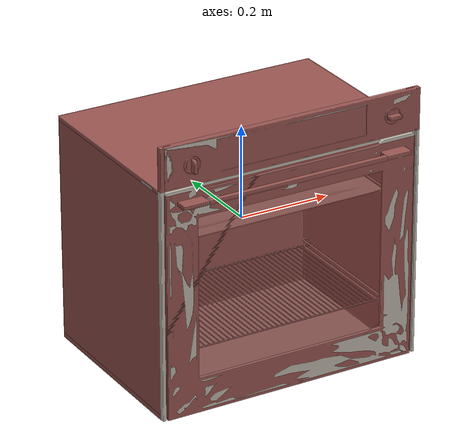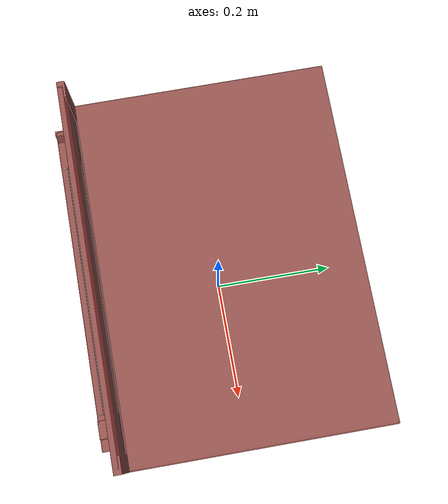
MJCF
<?xml version='1.0' encoding='UTF-8'?>
<mujoco model="model">
  <option timestep="0.002" gravity="0.0 0.0 -9.81"/>
  <compiler angle="radian"/>
  <asset>
    <mesh file="visuals/door.obj" name="door_vis"/>
    <mesh file="visuals/door_Clear.obj" name="door_Clear_vis"/>
    <mesh file="visuals/knob_temp.obj" name="knob_temp_vis"/>
    <mesh file="visuals/knob_time.obj" name="knob_time_vis"/>
    <mesh file="visuals/Body001.obj" name="Body001_vis"/>
    <mesh file="visuals/rack0.obj" name="rack0_vis"/>
    <mesh file="visuals/rack1.obj" name="rack1_vis"/>
    <texture file="visuals/T_BC001.png" name="Body001_material" type="2d"/>
    <material name="Body001_material" rgba="1 1 1 1.0" texture="Body001_material" shininess="0.4472135901451111" specular="1"/>
    <texture file="visuals/T_BC001.png" name="door_material" type="2d"/>
    <material name="door_material" rgba="1 1 1 1.0" texture="door_material" shininess="0.4472135901451111" specular="1"/>
    <material name="door_Clear_material" rgba="0.0984579548239708 0.0984579548239708 0.0984579548239708 0.699999988079071" shininess="0.4472135901451111" specular="0.3103448502657381"/>
    <texture file="visuals/T_BC001.png" name="knob_temp_material" type="2d"/>
    <material name="knob_temp_material" rgba="1 1 1 1.0" texture="knob_temp_material" shininess="0.4472135901451111" specular="0.3103448502657381"/>
    <texture file="visuals/T_BC001.png" name="knob_time_material" type="2d"/>
    <material name="knob_time_material" rgba="1 1 1 1.0" texture="knob_time_material" shininess="0.4472135901451111" specular="0.3103448502657381"/>
    <texture file="visuals/T_BC001.png" name="rack0_material" type="2d"/>
    <material name="rack0_material" rgba="1 1 1 1.0" texture="rack0_material" shininess="0.4472135901451111" specular="5"/>
    <texture file="visuals/T_BC001.png" name="rack1_material" type="2d"/>
    <material name="rack1_material" rgba="1 1 1 1.0" texture="rack1_material" shininess="0.4472135901451111" specular="5"/>
  </asset>
  <default>
    <default class="visual">
      <geom conaffinity="0" contype="0" group="1" type="mesh"/>
    </default>
    <default class="collision">
      <geom group="0" rgba="0.5 0 0 0.5"/>
    </default>
    <default class="spawn">
      <geom group="0" rgba="1 1 1 0.5" contype="0" conaffinity="0"/>
      <site group="0" rgba="1 1 1 0.5"/>
    </default>
    <default class="region">
      <geom group="1" conaffinity="0" contype="0" rgba="0 1 0 0"/>
    </default>
  </default>
  <worldbody>
    <body>
      <body name="object">
        <geom mesh="Body001_vis" type="mesh" solimp="0.998 0.998 0.001" solref="0.001 1" friction="0.95 0.3 0.1" class="visual" material="Body001_material"/>
        <geom class="collision" type="box" pos="0.27580202 0.01959658 -0.04472774" size="0.016508709639310837 0.20345096290111542 0.24839644134044647" quat="1.0 0.0 0.0 0.0"/>
        <geom class="collision" type="box" pos="0.00002453 0.01894817 -0.28782088" size="0.2923431694507599 0.2040993571281433 0.005308896768838167" quat="1.0 0.0 0.0 0.0"/>
        <geom class="collision" type="box" pos="0.00007293 0.20158333 -0.05486662" size="0.2922380864620209 0.021463928744196892 0.23826324939727783" quat="1.0 0.0 0.0 0.0"/>
        <geom class="collision" type="box" pos="0.00000002 -0.18993939 0.24786870" size="0.29237061738967896 0.006194792687892914 0.045261602848768234" quat="1.0 0.0 0.0 0.0"/>
        <geom class="collision" type="box" pos="0.00007259 0.01880797 0.19314815" size="0.2922322154045105 0.20423954725265503 0.010526210069656372" quat="1.0 0.0 0.0 0.0"/>
        <geom class="collision" type="box" pos="-0.27598882 0.01923741 -0.04943070" size="0.016176825389266014 0.20381009578704834 0.24369482696056366" quat="1.0 0.0 0.0 0.0"/>
        <geom class="collision" type="box" pos="-0.24940670 0.01157247 -0.17394648" size="0.010190319269895554 0.15972642600536346 0.0017948284512385726" quat="1.0 0.0 0.0 0.0"/>
        <geom class="collision" type="box" pos="-0.24940670 0.01157247 -0.18717948" size="0.010190412402153015 0.15972642600536346 0.0017948471941053867" quat="1.0 0.0 0.0 0.0"/>
        <geom class="collision" type="box" pos="-0.24940670 0.01157247 0.05792674" size="0.010190421715378761 0.15972642600536346 0.001794849056750536" quat="1.0 0.0 0.0 0.0"/>
        <geom class="collision" type="box" pos="-0.24940670 0.01157247 0.07195982" size="0.010190431028604507 0.15972642600536346 0.0017948509193956852" quat="1.0 0.0 0.0 0.0"/>
        <geom class="collision" type="box" pos="0.24834456 0.01157247 0.07195982" size="0.010190440341830254 0.15972642600536346 0.0017948527820408344" quat="1.0 0.0 0.0 0.0"/>
        <geom class="collision" type="box" pos="0.24834456 0.01157247 0.05792674" size="0.010190449655056 0.15972642600536346 0.0017948546446859837" quat="1.0 0.0 0.0 0.0"/>
        <geom class="collision" type="box" pos="0.24952960 0.01157247 -0.18717948" size="0.010190458968281746 0.15972642600536346 0.0017948565073311329" quat="1.0 0.0 0.0 0.0"/>
        <geom class="collision" type="box" pos="0.24952960 0.01157247 -0.17394648" size="0.010190468281507492 0.15972642600536346 0.0017948583699762821" quat="1.0 0.0 0.0 0.0"/>
        <body name="door">
          <joint axis="1.0 0.0 0.0" pos="0.00073342 -0.19632893690327882 -0.29312572673233034" limited="true" name="door_joint" range="0.0 1.15" type="hinge" damping="1" frictionloss="1" armature="1" stiffness="2"/>
          <geom mesh="door_vis" type="mesh" solimp="0.998 0.998 0.001" solref="0.001 1" friction="0.95 0.3 0.1" class="visual" material="door_material"/>
          <geom class="collision" type="box" pos="0.00077938 -0.19544769 -0.04457451" size="0.21654897928237915 0.0008811974548734725 0.17973452806472778" quat="1.0 0.0 0.0 0.0"/>
          <geom class="collision" type="box" pos="0.00073342 -0.19216664 -0.05061058" size="0.28171712160110474 0.00416234415024519 0.24251464009284973" quat="1.0 0.0 0.0 0.0"/>
          <geom class="collision" type="box" pos="-0.22942011 -0.20990361 0.17171532" size="0.027800362557172775 0.013631647452712059 0.0041112336330115795" quat="1.0 0.0 0.0 0.0"/>
          <geom class="collision" type="box" pos="0.00034673 -0.21846403 0.17146266" size="0.20033970475196838 0.004849614575505257 0.0046343752183020115" quat="1.0 0.0 0.0 0.0" name="door_handle_main"/>
          <geom class="collision" type="box" pos="0.22908454 -0.20984788 0.17171532" size="0.027705078944563866 0.013575964607298374 0.0041112336330115795" quat="1.0 0.0 0.0 0.0"/>
          <geom class="collision" type="box" pos="0.00073342 -0.19488723 -0.05061058" size="0.28171712160110474 0.0014417069032788277 0.24251514673233032" quat="1.0 0.0 0.0 0.0" name="door_main"/>
          <body name="door_Clear">
            <geom mesh="door_Clear_vis" type="mesh" solimp="0.998 0.998 0.001" solref="0.001 1" friction="0.95 0.3 0.1" class="visual" material="door_Clear_material"/>
            <geom class="collision" type="box" pos="0.00077938 -0.19544769 -0.04457451" size="0.21654897928237915 0.0008811974548734725 0.17973452806472778" quat="1.0 0.0 0.0 0.0"/>
          </body>
        </body>
        <body name="knob_temp">
          <joint axis="0.0 1.0 0.0" pos="0.22680129 -0.20436713 0.24797799" limited="true" name="knob_temp_joint" range="0.0 3.141592653589793" type="hinge" damping="0.05" frictionloss="0.75" armature="1"/>
          <geom mesh="knob_temp_vis" type="mesh" solimp="0.998 0.998 0.001" solref="0.001 1" friction="0.95 0.3 0.1" class="visual" material="knob_temp_material"/>
          <geom class="collision" type="cylinder" pos="0.22680460 -0.19823067 0.24791473" size="0.017284449189901352 0.0016975844046100974" quat="0.7071067094802856 0.70710688829422 0.0 0.0" friction="100 0.5 0.01"/>
          <geom class="collision" type="box" pos="0.22683671 -0.20643118 0.24798055" size="0.01364112738519907 0.00674217427149415 0.003762159263715148" quat="1.0 0.0 0.0 0.0" name="knob_temp_main" friction="100 0.5 0.01"/>
        </body>
        <body name="knob_time">
          <joint axis="0.0 1.0 0.0" pos="-0.22490118 -0.20436713 0.24655443" limited="true" name="knob_time_joint" range="0.0 3.9269908169872414" type="hinge" damping="0.05" armature="1" frictionloss="0.75"/>
          <geom mesh="knob_time_vis" type="mesh" solimp="0.998 0.998 0.001" solref="0.001 1" friction="0.95 0.3 0.1" class="visual" material="knob_time_material"/>
          <geom class="collision" type="cylinder" pos="-0.22494757 -0.19819937 0.24660231" size="0.01780148409307003 0.0017836537444964051" quat="0.7071067094802856 0.70710688829422 0.0 0.0" friction="100 0.5 0.01"/>
          <geom class="collision" type="box" pos="-0.22492503 -0.20643118 0.24661160" size="0.0037621567025780678 0.006742172408849001 0.013641126453876495" quat="1.0 0.0 0.0 0.0" name="knob_time_main" friction="100 0.5 0.01"/>
        </body>
        <body name="rack0">
          <geom class="region" name="reg_rack0" type="box" pos="0.0003799349999999979 0.002178980000000011 -0.06391476500000001" size="0.219272765 0.14106581 0.112083085"/>
          <joint axis="0.0 -1.0 0.0" pos="-0.00021008 0.02281951 -0.18208450" limited="true" name="rack0_joint" range="0.0 0.26" type="slide" damping="1" frictionloss="1" armature=".01" stiffness="0.05"/>
          <geom mesh="rack0_vis" type="mesh" solimp="0.998 0.998 0.001" solref="0.001 1" friction="0.95 0.3 0.1" class="visual" material="rack0_material"/>
          <geom class="collision" type="box" pos="-0.00091453 0.00209105 -0.18215445" size="0.24853280186653137 0.14518658816814423 0.0021078819409012794" quat="1.0 0.0 0.0 0.0"/>
        </body>
        <body name="rack1">
          <geom class="region" name="reg_rack1" type="box" pos="2.892499999999909e-05 0.004736224999999997 0.11838214999999999" size="0.17318622500000003 0.092417335 0.059652659999999996"/>
          <joint axis="0.0 -1.0 0.0" pos="-0.00017559 0.00364441 0.05859228" limited="true" name="rack1_joint" range="0.0 0.26" type="slide" damping="1" frictionloss="1" armature=".01" stiffness="0.05"/>
          <geom mesh="rack1_vis" type="mesh" solimp="0.998 0.998 0.001" solref="0.001 1" friction="0.95 0.3 0.1" class="visual" material="rack1_material"/>
          <geom class="collision" type="box" pos="0.00035439 -0.10415615 0.05772328" size="0.211645245552063 0.010777400806546211 0.0013592814793810248" quat="0.9816452264785767 -0.19071628153324127 -1.1892749552311753e-17 -3.0007463577512143e-18"/>
          <geom class="collision" type="box" pos="0.00035439 0.11553377 0.06004904" size="0.211645245552063 0.012520662508904934 0.0019515734165906906" quat="0.9829722046852112 0.1837543249130249 0.0 0.0"/>
          <geom class="collision" type="box" pos="0.19601819 0.00702474 0.05865490" size="0.01651856116950512 0.11983037739992142 0.001471599331125617" quat="0.992330014705658 0.0 -0.12361680716276169 0.0"/>
          <geom class="collision" type="box" pos="-0.19469292 0.00702474 0.05941759" size="0.01651856116950512 0.11983037739992142 0.001471599331125617" quat="0.990329384803772 0.0 0.1387363225221634 0.0"/>
          <geom class="collision" type="box" pos="-0.22792611 0.00702912 0.06221648" size="0.016985222697257996 0.1200481504201889 0.0018778392113745213" quat="1.0 0.0 0.0 0.0"/>
          <geom class="collision" type="box" pos="0.22867170 0.00702912 0.06221648" size="0.016985220834612846 0.12004818767309189 0.0018778389785438776" quat="1.0 0.0 0.0 0.0"/>
          <geom class="collision" type="box" pos="0.00035439 0.13965553 0.06221648" size="0.24433104693889618 0.012070167809724808 0.0019515794701874256" quat="1.0 0.0 0.0 0.0"/>
          <geom class="collision" type="box" pos="0.00035439 -0.12920317 0.06221648" size="0.24433104693889618 0.015718981623649597 0.001951579935848713" quat="1.0 0.0 0.0 0.0"/>
          <geom class="collision" type="box" pos="0.00035439 0.00279865 0.05368958" size="0.17846274375915527 0.0995037779211998 0.0009639295749366283" quat="1.0 0.0 0.0 0.0"/>
        </body>
        <geom class="region" name="reg_int" type="box" pos="-0.0008811350000000051 -0.005164635000000001 -0.049470425" size="0.248335375 0.168943235 0.222434805"/>
        <geom class="region" name="reg_main" type="box" pos="5.000000025123796e-09 0.013359284999999999 9.999999994736442e-09" size="0.293367665 0.210688215 0.29412977"/>
      </body>
    </body>
  </worldbody>
  <actuator>
    <motor name="door_joint_actuator" joint="door_joint" gear="50"/>
    <motor name="knob_temp_joint_actuator" joint="knob_temp_joint" gear="50"/>
    <motor name="knob_time_joint_actuator" joint="knob_time_joint" gear="50"/>
    <motor name="rack0_joint_actuator" joint="rack0_joint" gear="50"/>
    <motor name="rack1_joint_actuator" joint="rack1_joint" gear="50"/>
  </actuator>
</mujoco>
